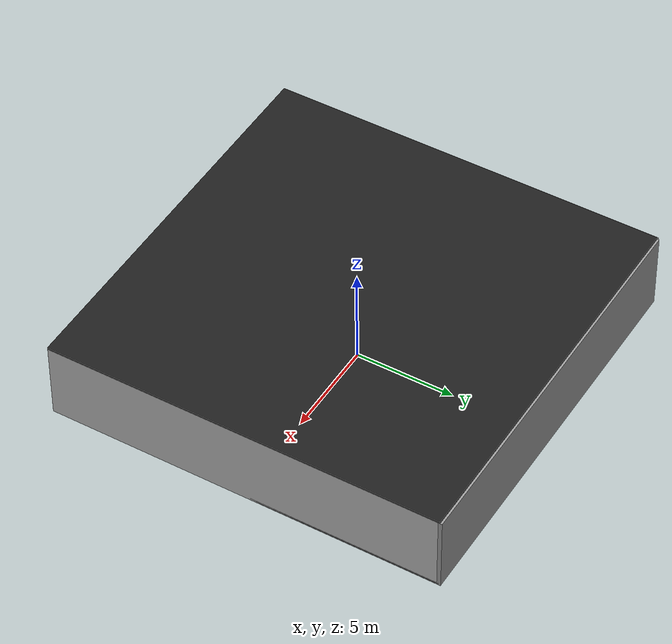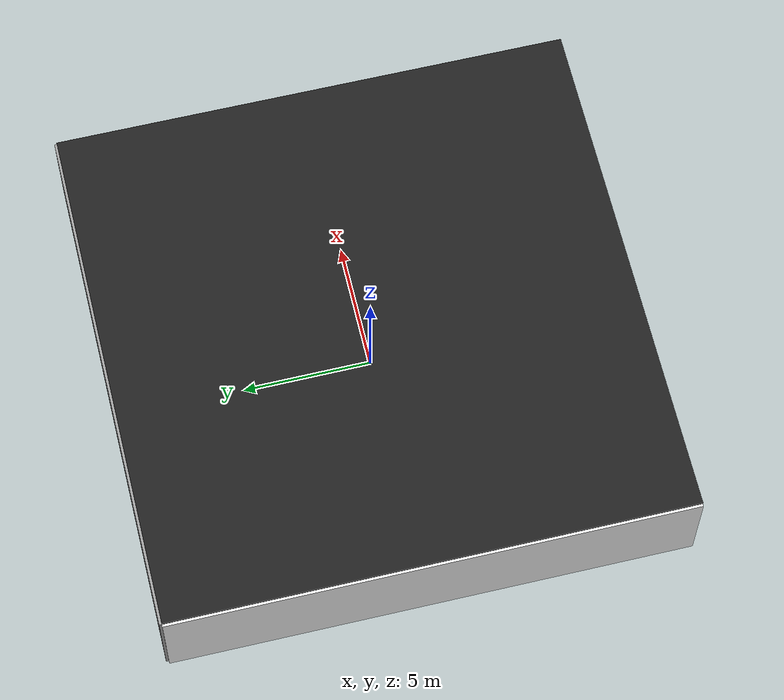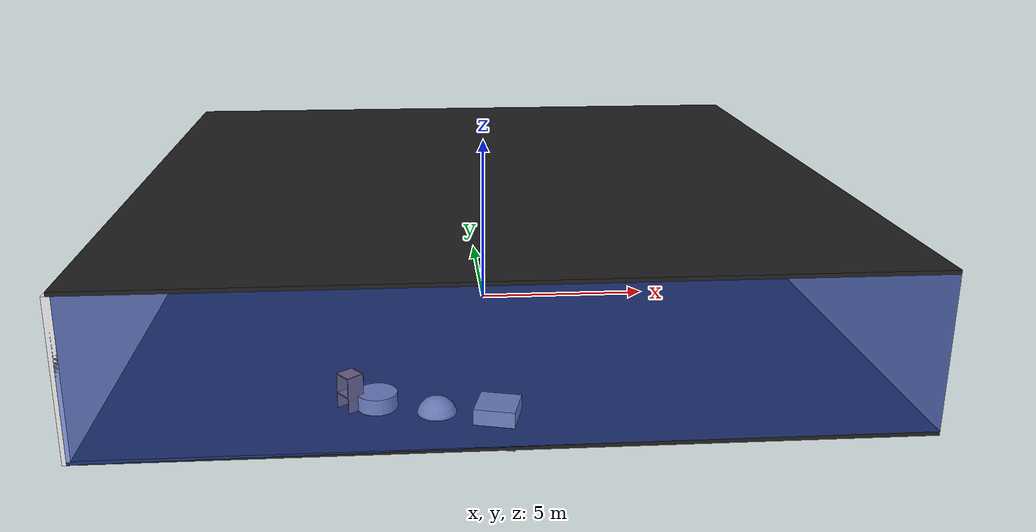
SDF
<sdf version="1.4">
 <world name="default">
  <physics type="ode">
   <max_step_size>0.001</max_step_size>
   <real_time_factor>1</real_time_factor>
   <real_time_update_rate>1000</real_time_update_rate>
   <gravity>0 0 -9.8</gravity>
  </physics>
  <scene><ambient>0.4 0.4 0.4 1</ambient><background>0.7 0.7 0.7 1</background><shadows>1</shadows></scene>
  <model name="Surrounding">
   <static>1</static>
   <link name="Ceiling">
    <collision name="Ceiling_Collision"><geometry><box><size>20 20 0.1</size></box></geometry></collision>
    <visual name="Ceiling_Visual">
     <geometry><box><size>20 20 0.1</size></box></geometry>
     <material>
      <script><uri>file://media/materials/scripts/gazebo.material</uri><name>Gazebo/Black</name></script>
     </material>
    </visual>
    <pose>0 0 4.05 0 0 0</pose>
   </link>
   <link name="Wall_South">
    <collision name="Wall_South_Collision">
     <geometry><box><size>20 0 4</size></box></geometry>
     <pose>0 0 2 0 -0 0</pose>
    </collision>
    <visual name="Wall_South_Visual">
     <pose>0 0 2 0 -0 0</pose>
     <geometry><box><size>20 0 4</size></box></geometry>
     <material>
      <script><uri>file://media/materials/scripts/gazebo.material</uri><name>Gazebo/BlueTransparent</name></script>
     </material>
    </visual>
    <velocity_decay><linear>0</linear><angular>0</angular></velocity_decay>
    <pose>0 -10 0 0 -0 0</pose>
   </link>
   <link name="Wall_East">
    <collision name="Wall_21_Collision">
     <geometry><box><size>20 0 4</size></box></geometry>
     <pose>0 0 2 0 -0 0</pose>
    </collision>
    <visual name="Wall_21_Visual">
     <pose>0 0 2 0 -0 0</pose>
     <geometry><box><size>20 0 4</size></box></geometry>
     <material>
      <script><uri>file://media/materials/scripts/gazebo.material</uri><name>Gazebo/CloudySky</name></script>
     </material>
    </visual>
    <velocity_decay><linear>0</linear><angular>0</angular></velocity_decay>
    <pose>10 0 0 0 -0 1.5708</pose>
   </link>
   <link name="Wall_North">
    <collision name="Wall_22_Collision">
     <geometry><box><size>20 0.2 4</size></box></geometry>
     <pose>0 0 2 0 -0 0</pose>
    </collision>
    <visual name="Wall_22_Visual">
     <pose>0 0 2 0 -0 0</pose>
     <geometry><box><size>20 0.2 4</size></box></geometry>
     <material>
      <script><uri>file://media/materials/scripts/gazebo.material</uri><name>Gazebo/Grey</name></script>
     </material>
    </visual>
    <velocity_decay><linear>0</linear><angular>0</angular></velocity_decay>
    <pose>0 10 0 0 -0 0</pose>
   </link>
   <link name="Wall_West">
    <collision name="Wall_23_Collision">
     <geometry><box><size>20 0.2 4</size></box></geometry>
     <pose>0 0 2 0 -0 0</pose>
    </collision>
    <visual name="Wall_23_Visual">
     <pose>0 0 2 0 -0 0</pose>
     <geometry><box><size>20 0.2 4</size></box></geometry>
     <material>
      <script><uri>file://media/materials/scripts/gazebo.material</uri><name>Gazebo/WhiteGlow</name></script>
     </material>
    </visual>
    <velocity_decay><linear>0</linear><angular>0</angular></velocity_decay>
    <pose>-10 0 0 0 0 -1.5708</pose>
   </link>
   <link name="Ground_link">
    <collision name="collision">
     <pose>0 0 .05 0 -0 0</pose>
     <geometry><box><size>20 20 0.1</size></box></geometry>
    </collision>
    <visual name="visual">
     <pose>0 0 .05 0 -0 0</pose>
     <geometry><box><size>20 20 0.1</size></box></geometry>
     <material>
      <script><uri>file://media/materials/scripts/gazebo.material</uri><name>Gazebo/Black</name></script>
     </material>
    </visual>
   </link>
   <static>1</static>
  </model>
  <spherical_coordinates>
   <surface_model>EARTH_WGS84</surface_model>
   <latitude_deg>0</latitude_deg>
   <longitude_deg>0</longitude_deg>
   <elevation>0</elevation>
   <heading_deg>0</heading_deg>
  </spherical_coordinates>
  <light name="lightball_0" type="diffuse">
   <diffuse>0.8 0.8 0.8 1</diffuse>
   <specular>0.2 0.2 0.2 1</specular>
   <attenuation>
    <range>100</range>
    <constant>0.7</constant>
    <linear>0.01</linear>
    <quadratic>0.001</quadratic>
   </attenuation>
   <direction>-0.5 0.1 -0.9</direction>
   <pose>2.35231396161 3.65274835612 1.89348835666 0 0 0</pose>
  </light>
  <light name="lightball_1" type="diffuse">
   <diffuse>0.8 0.8 0.8 1</diffuse>
   <specular>0.2 0.2 0.2 1</specular>
   <attenuation>
    <range>100</range>
    <constant>0.7</constant>
    <linear>0.01</linear>
    <quadratic>0.001</quadratic>
   </attenuation>
   <direction>-0.5 0.1 -0.9</direction>
   <pose>1.88182987188 -6.78214604336 1.31406590471 0 0 0</pose>
  </light>
  <light name="lightball_2" type="diffuse">
   <diffuse>0.8 0.8 0.8 1</diffuse>
   <specular>0.2 0.2 0.2 1</specular>
   <attenuation>
    <range>100</range>
    <constant>0.7</constant>
    <linear>0.01</linear>
    <quadratic>0.001</quadratic>
   </attenuation>
   <direction>-0.5 0.1 -0.9</direction>
   <pose>-7.7797473589 4.30731659808 1.63594731008 0 0 0</pose>
  </light>
  <light name="lightball_3" type="diffuse">
   <diffuse>0.8 0.8 0.8 1</diffuse>
   <specular>0.2 0.2 0.2 1</specular>
   <attenuation>
    <range>100</range>
    <constant>0.7</constant>
    <linear>0.01</linear>
    <quadratic>0.001</quadratic>
   </attenuation>
   <direction>-0.5 0.1 -0.9</direction>
   <pose>9.59470285806 3.5451007859 3.05629457705 0 0 0</pose>
  </light>
  <light name="lightball_4" type="diffuse">
   <diffuse>0.8 0.8 0.8 1</diffuse>
   <specular>0.2 0.2 0.2 1</specular>
   <attenuation>
    <range>100</range>
    <constant>0.7</constant>
    <linear>0.01</linear>
    <quadratic>0.001</quadratic>
   </attenuation>
   <direction>-0.5 0.1 -0.9</direction>
   <pose>0.192435369562 5.86844471991 1.20269636042 0 0 0</pose>
  </light>
  <light name="lightball_5" type="diffuse">
   <diffuse>0.8 0.8 0.8 1</diffuse>
   <specular>0.2 0.2 0.2 1</specular>
   <attenuation>
    <range>100</range>
    <constant>0.7</constant>
    <linear>0.01</linear>
    <quadratic>0.001</quadratic>
   </attenuation>
   <direction>-0.5 0.1 -0.9</direction>
   <pose>-6.77519307947 -7.56434199247 3.17852477418 0 0 0</pose>
  </light>
  <light name="lightball_6" type="diffuse">
   <diffuse>0.8 0.8 0.8 1</diffuse>
   <specular>0.2 0.2 0.2 1</specular>
   <attenuation>
    <range>100</range>
    <constant>0.7</constant>
    <linear>0.01</linear>
    <quadratic>0.001</quadratic>
   </attenuation>
   <direction>-0.5 0.1 -0.9</direction>
   <pose>1.55064344939 -2.84475280261 1.61711896246 0 0 0</pose>
  </light>
  <light name="lightball_7" type="diffuse">
   <diffuse>0.8 0.8 0.8 1</diffuse>
   <specular>0.2 0.2 0.2 1</specular>
   <attenuation>
    <range>100</range>
    <constant>0.7</constant>
    <linear>0.01</linear>
    <quadratic>0.001</quadratic>
   </attenuation>
   <direction>-0.5 0.1 -0.9</direction>
   <pose>-7.64870267936 2.23761582958 2.52005368306 0 0 0</pose>
  </light>
  <light name="lightball_8" type="diffuse">
   <diffuse>0.8 0.8 0.8 1</diffuse>
   <specular>0.2 0.2 0.2 1</specular>
   <attenuation>
    <range>100</range>
    <constant>0.7</constant>
    <linear>0.01</linear>
    <quadratic>0.001</quadratic>
   </attenuation>
   <direction>-0.5 0.1 -0.9</direction>
   <pose>2.79690152347 4.90819468991 2.11372664499 0 0 0</pose>
  </light>
  <light name="lightball_9" type="diffuse">
   <diffuse>0.8 0.8 0.8 1</diffuse>
   <specular>0.2 0.2 0.2 1</specular>
   <attenuation>
    <range>100</range>
    <constant>0.7</constant>
    <linear>0.01</linear>
    <quadratic>0.001</quadratic>
   </attenuation>
   <direction>-0.5 0.1 -0.9</direction>
   <pose>8.04139549656 8.46709578423 1.40439620827 0 0 0</pose>
  </light>
  <light name="lightball_10" type="diffuse">
   <diffuse>0.8 0.8 0.8 1</diffuse>
   <specular>0.2 0.2 0.2 1</specular>
   <attenuation>
    <range>100</range>
    <constant>0.7</constant>
    <linear>0.01</linear>
    <quadratic>0.001</quadratic>
   </attenuation>
   <direction>-0.5 0.1 -0.9</direction>
   <pose>-6.99527799438 -5.03545655658 1.35716427297 0 0 0</pose>
  </light>
  <include><uri>model://cabinet</uri><pose>-3.81654049842 -7.79811508964 0 0 0 0.651759761385</pose></include>
  <include>
   <uri>model://textured_shapes</uri>
   <pose>-1.71555038241 -8.15470300052 0 0 0 1.30927757241</pose>
  </include>
  <include><uri>model://cabinet</uri><pose>-0.926437860067 3.88673359209 0 0 0 2.89823936269</pose></include>
  <include>
   <uri>model://construction_cone</uri>
   <pose>4.76856445869 1.91785301821 0 0 0 0.937616609414</pose>
  </include>
 </world>
</sdf>

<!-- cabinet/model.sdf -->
<sdf version="1.5">
  <model name="cabinet">
    <static>true</static>
    <link name="cabinet_bottom_plate">
      <inertial>
        <pose>0 0 -1 0 0 0</pose>
        <inertia>
          <ixx>2.050000</ixx>
          <ixy>0</ixy>
          <ixz>0</ixz>
          <iyy>2.050000</iyy>
          <iyz>0</iyz>
          <izz>2.050000</izz>
        </inertia>
        <mass>25.000000</mass>
      </inertial>
      <collision name="cabinet_bottom_plate_geom">
        <pose>0 0 0.010000 0 0 0</pose>
        <geometry>
          <box>
            <size>0.450000 0.450000 0.020000</size>
          </box>
        </geometry>
      </collision>
      <visual name="cabinet_bottom_plate_geom_visual">
        <pose>0 0 0.010000 0 0 0</pose>
        <geometry>
          <box>
            <size>0.450000 0.450000 0.020000</size>
          </box>
        </geometry>
        <material>
          <script>
            <uri>model://media/materials/scripts/gazebo.material</uri>
            <name>Gazebo/Wood</name>
          </script>
        </material>
      </visual>
      <collision name="cabinet_bottom_plate_geom_cabinet_back_plate">
        <pose>0.235000 0 0.510000 0 0 0</pose>
        <geometry>
          <box>
            <size>0.020000 0.450000 1.020000</size>
          </box>
        </geometry>
      </collision>
      <visual name="cabinet_bottom_plate_geom_cabinet_back_plate_visual">
        <pose>0.235000 0 0.510000 0 0 0</pose>
        <geometry>
          <box>
            <size>0.020000 0.450000 1.020000</size>
          </box>
        </geometry>
        <material>
          <script>
            <uri>model://media/materials/scripts/gazebo.material</uri>
            <name>Gazebo/Wood</name>
          </script>
        </material>
      </visual>
      <collision name="cabinet_bottom_plate_geom_cabinet_left_plate">
        <pose>0 0.235000 0.510000 0 0 0</pose>
        <geometry>
          <box>
            <size>0.450000 0.020000 1.020000</size>
          </box>
        </geometry>
      </collision>
      <visual name="cabinet_bottom_plate_geom_cabinet_left_plate_visual">
        <pose>0 0.235000 0.510000 0 0 0</pose>
        <geometry>
          <box>
            <size>0.450000 0.020000 1.020000</size>
          </box>
        </geometry>
        <material>
          <script>
            <uri>model://media/materials/scripts/gazebo.material</uri>
            <name>Gazebo/Wood</name>
          </script>
        </material>
      </visual>
      <collision name="cabinet_bottom_plate_geom_cabinet_middle_plate">
        <pose>0 0 0.510000 0 0 0</pose>
        <geometry>
          <box>
            <size>0.450000 0.450000 0.020000</size>
          </box>
        </geometry>
      </collision>
      <visual name="cabinet_bottom_plate_geom_cabinet_middle_plate_visual">
        <pose>0 0 0.510000 0 0 0</pose>
        <geometry>
          <box>
            <size>0.450000 0.450000 0.020000</size>
          </box>
        </geometry>
        <material>
          <script>
            <uri>model://media/materials/scripts/gazebo.material</uri>
            <name>Gazebo/Wood</name>
          </script>
        </material>
      </visual>
      <collision name="cabinet_bottom_plate_geom_cabinet_right_plate">
        <pose>0 -0.235000 0.510000 0 0 0</pose>
        <geometry>
          <box>
            <size>0.450000 0.020000 1.020000</size>
          </box>
        </geometry>
      </collision>
      <visual name="cabinet_bottom_plate_geom_cabinet_right_plate_visual">
        <pose>0 -0.235000 0.510000 0 0 0</pose>
        <geometry>
          <box>
            <size>0.450000 0.020000 1.020000</size>
          </box>
        </geometry>
        <material>
          <script>
            <uri>model://media/materials/scripts/gazebo.material</uri>
            <name>Gazebo/Wood</name>
          </script>
        </material>
      </visual>
      <collision name="cabinet_bottom_plate_geom_cabinet_top_plate">
        <pose>0 0 1.010000 0 0 0</pose>
        <geometry>
          <box>
            <size>0.450000 0.450000 0.020000</size>
          </box>
        </geometry>
      </collision>
      <visual name="cabinet_bottom_plate_geom_cabinet_top_plate_visual">
        <pose>0 0 1.010000 0 0 0</pose>
        <geometry>
          <box>
            <size>0.450000 0.450000 0.020000</size>
          </box>
        </geometry>
        <material>
          <script>
            <uri>model://media/materials/scripts/gazebo.material</uri>
            <name>Gazebo/Wood</name>
          </script>
        </material>
      </visual>
    </link>
  </model>
</sdf>

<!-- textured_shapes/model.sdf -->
<sdf version="1.6">
  <model name="textured_shapes">
    <pose>0 0 0.5 0 0 0</pose>
    <link name="box">
      <pose>0 -1.5 0 0 0 0</pose>
      <collision name="collision">
        <geometry>
          <box>
            <size>1 1 1</size>
          </box>
        </geometry>
      </collision>
      <visual name="visual">
        <geometry>
          <box>
            <size>1 1 1</size>
          </box>
        </geometry>
        <material>
          <script>
            <uri>model://../model_source/models/textured_shapes/materials/scripts</uri>
            <uri>model://../model_source/models/textured_shapes/materials/textures</uri>
            <name>TexturedShape/Squares</name>
          </script>
        </material>
      </visual>
    </link>
    <link name="sphere">
      <collision name="collision">
        <geometry>
          <sphere>
            <radius>0.5</radius>
          </sphere>
        </geometry>
      </collision>
      <visual name="visual">
        <geometry>
          <sphere>
            <radius>0.5</radius>
          </sphere>
        </geometry>
        <material>
          <script>
            <uri>model://../model_source/models/textured_shapes/materials/scripts</uri>
            <uri>model://../model_source/models/textured_shapes/materials/textures</uri>
            <name>TexturedShape/Squares</name>
          </script>
        </material>
      </visual>
    </link>
    <link name="cylinder">
      <pose>0 1.5 0 0 0 0</pose>
      <collision name="collision">
        <geometry>
          <cylinder>
            <radius>0.5</radius>
            <length>1</length>
          </cylinder>
        </geometry>
      </collision>
      <visual name="visual">
        <geometry>
          <cylinder>
            <radius>0.5</radius>
            <length>1</length>
          </cylinder>
        </geometry>
        <material>
          <script>
            <uri>model://../model_source/models/textured_shapes/materials/scripts</uri>
            <uri>model://../model_source/models/textured_shapes/materials/textures</uri>
            <name>TexturedShape/Squares</name>
          </script>
        </material>
      </visual>
    </link>
  </model>
</sdf>

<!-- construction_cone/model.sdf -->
<sdf version="1.5">
  <model name="Construction Cone">
    <link name="link">
      <collision name="collision">
        <geometry>
          <mesh>
            <scale>10 10 10</scale>
            <uri>file://isr-testbed/construction_cone/meshes/construction_cone.dae</uri>
          </mesh>
        </geometry>
      </collision>
      <visual name="visual">
        <geometry>
          <mesh>
            <scale>10 10 10</scale>
            <uri>file://isr-testbed/construction_cone/meshes/construction_cone.dae</uri>
          </mesh>
        </geometry>
      </visual>
    </link>
  </model>
</sdf>
